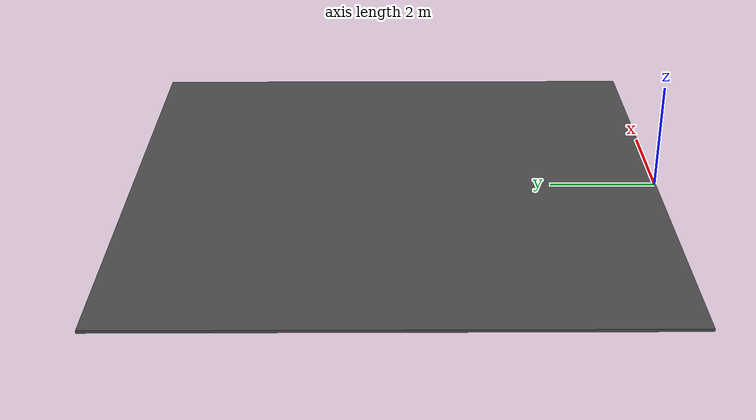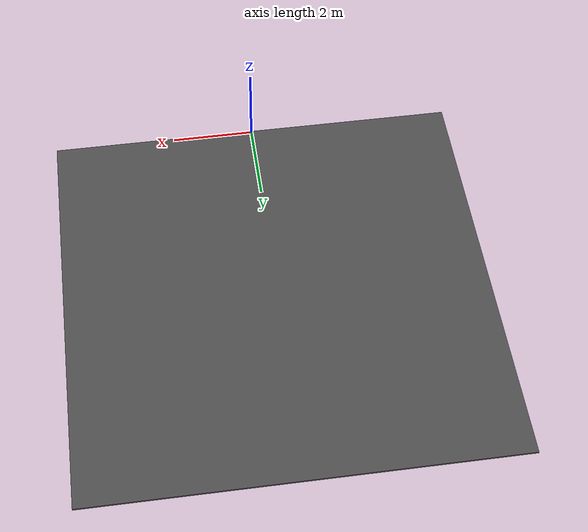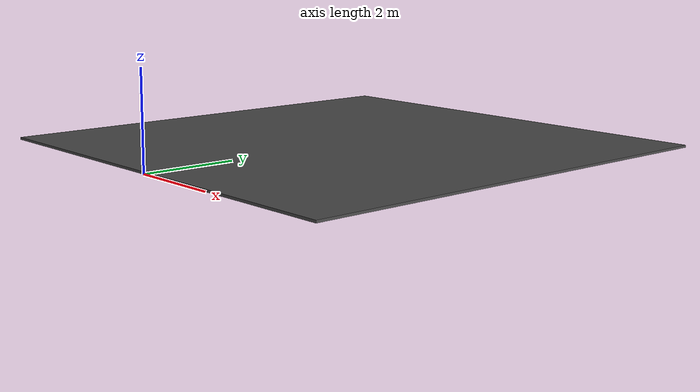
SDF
<?xml version='1.0'?>
<sdf version="1.5">
  <model name="split_flat_surface"> <!-- Very important to change-->
    <static>true</static>
    <pose>0 0 0 0 0 0</pose> <!-- Translation: X Y Z and Rotation: Roll Pitch Yaw (In Radian)-->
    <link name="body">

    <inertial> >
    <mass>0</mass>
      <inertia>
        <ixx>0</ixx>
        <ixy>0</ixy>
        <ixz>0</ixz>
        <iyy>0</iyy>
        <iyz>0</iyz>
        <izz>0</izz>
      </inertia>
    </inertial>

       <collision name="collision"> <!-- You can use mesh like below -->
        <geometry>
          <mesh><!-- Very important to change-->
             <uri>/home/sorox23/robotic_ws/master_thesis_ws/src/property_based_tester/environment/models/split_flat_surface/meshes/split_flat_surface.stl</uri>
             <scale>0.01 0.01 0.01</scale>
          </mesh>
        </geometry>
      </collision>

      <visual name="visual">
        <geometry>
          <mesh><!-- Very important to change-->
             <uri>/home/sorox23/robotic_ws/master_thesis_ws/src/property_based_tester/environment/models/split_flat_surface/meshes/split_flat_surface.stl</uri>
             <scale>0.01 0.01 0.01</scale>
          </mesh>
        </geometry>

        <material>
          <script> <!-- Very important to change-->
             <uri>/home/sorox23/robotic_ws/master_thesis_ws/src/property_based_tester/environment/models/split_flat_surface/materials/scripts</uri>
             <uri>/home/sorox23/robotic_ws/master_thesis_ws/src/property_based_tester/environment/models/split_flat_surface/materials/textures</uri>
             <name>Gazebo/DarkGrey</name>
          </script>
        </material>
      </visual>

    </link>
  </model>
</sdf>
